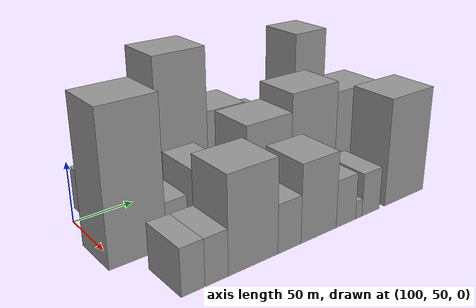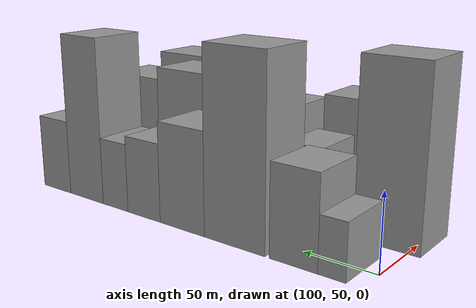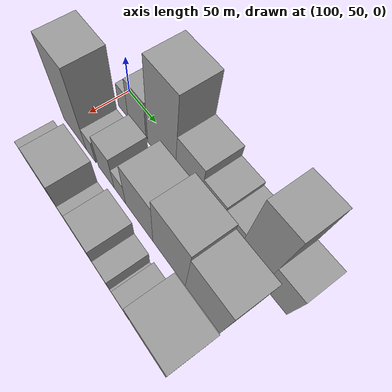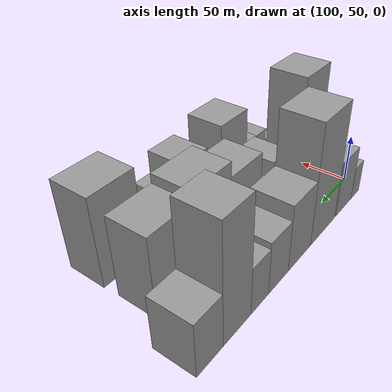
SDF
<sdf version="1.6">
 <world name="default">
  <model name="building_16">
   <static>1</static>
   <pose>100.0000 69.0831 0 0.000000 0.000000 0.000000</pose>
   <link name="link">
    <pose>0 0 18.00 0 0 0</pose>
    <collision name="collision"><geometry><box><size>40.0000 18.0495 36.0000</size></box></geometry></collision>
    <visual name="visual">
     <cast_shadows>0</cast_shadows>
     <geometry><box><size>40.0000 18.0495 36.0000</size></box></geometry>
     <material>
      <script>
       <uri>model://grey_wall/materials/scripts</uri>
       <uri>model://grey_wall/materials/textures</uri>
       <name>vrc/grey_wall</name>
      </script>
     </material>
    </visual>
   </link>
  </model>
  <model name="building_17">
   <static>1</static>
   <pose>100.0000 94.7705 0 0.000000 0.000000 0.000000</pose>
   <link name="link">
    <pose>0 0 30.00 0 0 0</pose>
    <collision name="collision"><geometry><box><size>40.0000 33.3253 60.0000</size></box></geometry></collision>
    <visual name="visual">
     <cast_shadows>0</cast_shadows>
     <geometry><box><size>40.0000 33.3253 60.0000</size></box></geometry>
     <material>
      <script>
       <uri>model://grey_wall/materials/scripts</uri>
       <uri>model://grey_wall/materials/textures</uri>
       <name>vrc/grey_wall</name>
      </script>
     </material>
    </visual>
   </link>
  </model>
  <model name="building_18">
   <static>1</static>
   <pose>100.0000 137.8663 0 0.000000 0.000000 0.000000</pose>
   <link name="link">
    <pose>0 0 61.50 0 0 0</pose>
    <collision name="collision"><geometry><box><size>40.0000 46.8662 123.0000</size></box></geometry></collision>
    <visual name="visual">
     <cast_shadows>0</cast_shadows>
     <geometry><box><size>40.0000 46.8662 123.0000</size></box></geometry>
     <material>
      <script>
       <uri>model://grey_wall/materials/scripts</uri>
       <uri>model://grey_wall/materials/textures</uri>
       <name>vrc/grey_wall</name>
      </script>
     </material>
    </visual>
   </link>
  </model>
  <model name="building_19">
   <static>1</static>
   <pose>100.0000 180.4211 0 0.000000 0.000000 0.000000</pose>
   <link name="link">
    <pose>0 0 34.50 0 0 0</pose>
    <collision name="collision"><geometry><box><size>40.0000 38.2435 69.0000</size></box></geometry></collision>
    <visual name="visual">
     <cast_shadows>0</cast_shadows>
     <geometry><box><size>40.0000 38.2435 69.0000</size></box></geometry>
     <material>
      <script>
       <uri>model://grey_wall/materials/scripts</uri>
       <uri>model://grey_wall/materials/textures</uri>
       <name>vrc/grey_wall</name>
      </script>
     </material>
    </visual>
   </link>
  </model>
  <model name="building_20">
   <static>1</static>
   <pose>100.0000 214.7776 0 0.000000 0.000000 0.000000</pose>
   <link name="link">
    <pose>0 0 27.00 0 0 0</pose>
    <collision name="collision"><geometry><box><size>40.0000 30.4695 54.0000</size></box></geometry></collision>
    <visual name="visual">
     <cast_shadows>0</cast_shadows>
     <geometry><box><size>40.0000 30.4695 54.0000</size></box></geometry>
     <material>
      <script>
       <uri>model://grey_wall/materials/scripts</uri>
       <uri>model://grey_wall/materials/textures</uri>
       <name>vrc/grey_wall</name>
      </script>
     </material>
    </visual>
   </link>
  </model>
  <model name="building_21">
   <static>1</static>
   <pose>100.0000 242.4147 0 0.000000 0.000000 0.000000</pose>
   <link name="link">
    <pose>0 0 24.00 0 0 0</pose>
    <collision name="collision"><geometry><box><size>40.0000 24.8045 48.0000</size></box></geometry></collision>
    <visual name="visual">
     <cast_shadows>0</cast_shadows>
     <geometry><box><size>40.0000 24.8045 48.0000</size></box></geometry>
     <material>
      <script>
       <uri>model://grey_wall/materials/scripts</uri>
       <uri>model://grey_wall/materials/textures</uri>
       <name>vrc/grey_wall</name>
      </script>
     </material>
    </visual>
   </link>
  </model>
  <model name="building_22">
   <static>1</static>
   <pose>100.0000 272.4213 0 0.000000 0.000000 0.000000</pose>
   <link name="link">
    <pose>0 0 58.50 0 0 0</pose>
    <collision name="collision"><geometry><box><size>40.0000 35.2088 117.0000</size></box></geometry></collision>
    <visual name="visual">
     <cast_shadows>0</cast_shadows>
     <geometry><box><size>40.0000 35.2088 117.0000</size></box></geometry>
     <material>
      <script>
       <uri>model://grey_wall/materials/scripts</uri>
       <uri>model://grey_wall/materials/textures</uri>
       <name>vrc/grey_wall</name>
      </script>
     </material>
    </visual>
   </link>
  </model>
  <model name="building_23">
   <static>1</static>
   <pose>100.0000 305.1932 0 0.000000 0.000000 0.000000</pose>
   <link name="link">
    <pose>0 0 27.00 0 0 0</pose>
    <collision name="collision"><geometry><box><size>40.0000 30.3350 54.0000</size></box></geometry></collision>
    <visual name="visual">
     <cast_shadows>0</cast_shadows>
     <geometry><box><size>40.0000 30.3350 54.0000</size></box></geometry>
     <material>
      <script>
       <uri>model://grey_wall/materials/scripts</uri>
       <uri>model://grey_wall/materials/textures</uri>
       <name>vrc/grey_wall</name>
      </script>
     </material>
    </visual>
   </link>
  </model>
  <model name="building_46">
   <static>1</static>
   <pose>155.0000 64.1442 0 0.000000 0.000000 0.000000</pose>
   <link name="link">
    <pose>0 0 58.50 0 0 0</pose>
    <collision name="collision"><geometry><box><size>40.0000 45.3029 117.0000</size></box></geometry></collision>
    <visual name="visual">
     <cast_shadows>0</cast_shadows>
     <geometry><box><size>40.0000 45.3029 117.0000</size></box></geometry>
     <material>
      <script>
       <uri>model://grey_wall/materials/scripts</uri>
       <uri>model://grey_wall/materials/textures</uri>
       <name>vrc/grey_wall</name>
      </script>
     </material>
    </visual>
   </link>
  </model>
  <model name="building_47">
   <static>1</static>
   <pose>155.0000 95.9252 0 0.000000 0.000000 0.000000</pose>
   <link name="link">
    <pose>0 0 18.00 0 0 0</pose>
    <collision name="collision"><geometry><box><size>40.0000 18.2590 36.0000</size></box></geometry></collision>
    <visual name="visual">
     <cast_shadows>0</cast_shadows>
     <geometry><box><size>40.0000 18.2590 36.0000</size></box></geometry>
     <material>
      <script>
       <uri>model://grey_wall/materials/scripts</uri>
       <uri>model://grey_wall/materials/textures</uri>
       <name>vrc/grey_wall</name>
      </script>
     </material>
    </visual>
   </link>
  </model>
  <model name="building_48">
   <static>1</static>
   <pose>155.0000 124.2762 0 0.000000 0.000000 0.000000</pose>
   <link name="link">
    <pose>0 0 27.00 0 0 0</pose>
    <collision name="collision"><geometry><box><size>40.0000 28.4430 54.0000</size></box></geometry></collision>
    <visual name="visual">
     <cast_shadows>0</cast_shadows>
     <geometry><box><size>40.0000 28.4430 54.0000</size></box></geometry>
     <material>
      <script>
       <uri>model://grey_wall/materials/scripts</uri>
       <uri>model://grey_wall/materials/textures</uri>
       <name>vrc/grey_wall</name>
      </script>
     </material>
    </visual>
   </link>
  </model>
  <model name="building_49">
   <static>1</static>
   <pose>155.0000 148.5472 0 0.000000 0.000000 0.000000</pose>
   <link name="link">
    <pose>0 0 18.00 0 0 0</pose>
    <collision name="collision"><geometry><box><size>40.0000 20.0991 36.0000</size></box></geometry></collision>
    <visual name="visual">
     <cast_shadows>0</cast_shadows>
     <geometry><box><size>40.0000 20.0991 36.0000</size></box></geometry>
     <material>
      <script>
       <uri>model://grey_wall/materials/scripts</uri>
       <uri>model://grey_wall/materials/textures</uri>
       <name>vrc/grey_wall</name>
      </script>
     </material>
    </visual>
   </link>
  </model>
  <model name="building_50">
   <static>1</static>
   <pose>155.0000 180.9674 0 0.000000 0.000000 0.000000</pose>
   <link name="link">
    <pose>0 0 37.50 0 0 0</pose>
    <collision name="collision"><geometry><box><size>40.0000 44.7412 75.0000</size></box></geometry></collision>
    <visual name="visual">
     <cast_shadows>0</cast_shadows>
     <geometry><box><size>40.0000 44.7412 75.0000</size></box></geometry>
     <material>
      <script>
       <uri>model://grey_wall/materials/scripts</uri>
       <uri>model://grey_wall/materials/textures</uri>
       <name>vrc/grey_wall</name>
      </script>
     </material>
    </visual>
   </link>
  </model>
  <model name="building_51">
   <static>1</static>
   <pose>155.0000 227.7921 0 0.000000 0.000000 0.000000</pose>
   <link name="link">
    <pose>0 0 45.00 0 0 0</pose>
    <collision name="collision"><geometry><box><size>40.0000 48.9083 90.0000</size></box></geometry></collision>
    <visual name="visual">
     <cast_shadows>0</cast_shadows>
     <geometry><box><size>40.0000 48.9083 90.0000</size></box></geometry>
     <material>
      <script>
       <uri>model://grey_wall/materials/scripts</uri>
       <uri>model://grey_wall/materials/textures</uri>
       <name>vrc/grey_wall</name>
      </script>
     </material>
    </visual>
   </link>
  </model>
  <model name="building_52">
   <static>1</static>
   <pose>155.0000 276.0466 0 0.000000 0.000000 0.000000</pose>
   <link name="link">
    <pose>0 0 40.50 0 0 0</pose>
    <collision name="collision"><geometry><box><size>40.0000 47.6007 81.0000</size></box></geometry></collision>
    <visual name="visual">
     <cast_shadows>0</cast_shadows>
     <geometry><box><size>40.0000 47.6007 81.0000</size></box></geometry>
     <material>
      <script>
       <uri>model://grey_wall/materials/scripts</uri>
       <uri>model://grey_wall/materials/textures</uri>
       <name>vrc/grey_wall</name>
      </script>
     </material>
    </visual>
   </link>
  </model>
  <model name="building_79">
   <static>1</static>
   <pose>210.0000 72.5582 0 0.000000 0.000000 0.000000</pose>
   <link name="link">
    <pose>0 0 18.00 0 0 0</pose>
    <collision name="collision"><geometry><box><size>40.0000 18.1257 36.0000</size></box></geometry></collision>
    <visual name="visual">
     <cast_shadows>0</cast_shadows>
     <geometry><box><size>40.0000 18.1257 36.0000</size></box></geometry>
     <material>
      <script>
       <uri>model://grey_wall/materials/scripts</uri>
       <uri>model://grey_wall/materials/textures</uri>
       <name>vrc/grey_wall</name>
      </script>
     </material>
    </visual>
   </link>
  </model>
  <model name="building_80">
   <static>1</static>
   <pose>210.0000 90.9927 0 0.000000 0.000000 0.000000</pose>
   <link name="link">
    <pose>0 0 18.00 0 0 0</pose>
    <collision name="collision"><geometry><box><size>40.0000 18.7432 36.0000</size></box></geometry></collision>
    <visual name="visual">
     <cast_shadows>0</cast_shadows>
     <geometry><box><size>40.0000 18.7432 36.0000</size></box></geometry>
     <material>
      <script>
       <uri>model://grey_wall/materials/scripts</uri>
       <uri>model://grey_wall/materials/textures</uri>
       <name>vrc/grey_wall</name>
      </script>
     </material>
    </visual>
   </link>
  </model>
  <model name="building_81">
   <static>1</static>
   <pose>210.0000 121.7398 0 0.000000 0.000000 0.000000</pose>
   <link name="link">
    <pose>0 0 37.50 0 0 0</pose>
    <collision name="collision"><geometry><box><size>40.0000 42.7511 75.0000</size></box></geometry></collision>
    <visual name="visual">
     <cast_shadows>0</cast_shadows>
     <geometry><box><size>40.0000 42.7511 75.0000</size></box></geometry>
     <material>
      <script>
       <uri>model://grey_wall/materials/scripts</uri>
       <uri>model://grey_wall/materials/textures</uri>
       <name>vrc/grey_wall</name>
      </script>
     </material>
    </visual>
   </link>
  </model>
  <model name="building_82">
   <static>1</static>
   <pose>210.0000 153.9491 0 0.000000 0.000000 0.000000</pose>
   <link name="link">
    <pose>0 0 19.50 0 0 0</pose>
    <collision name="collision"><geometry><box><size>40.0000 21.6674 39.0000</size></box></geometry></collision>
    <visual name="visual">
     <cast_shadows>0</cast_shadows>
     <geometry><box><size>40.0000 21.6674 39.0000</size></box></geometry>
     <material>
      <script>
       <uri>model://grey_wall/materials/scripts</uri>
       <uri>model://grey_wall/materials/textures</uri>
       <name>vrc/grey_wall</name>
      </script>
     </material>
    </visual>
   </link>
  </model>
  <model name="building_83">
   <static>1</static>
   <pose>210.0000 182.4364 0 0.000000 0.000000 0.000000</pose>
   <link name="link">
    <pose>0 0 31.50 0 0 0</pose>
    <collision name="collision"><geometry><box><size>40.0000 35.3073 63.0000</size></box></geometry></collision>
    <visual name="visual">
     <cast_shadows>0</cast_shadows>
     <geometry><box><size>40.0000 35.3073 63.0000</size></box></geometry>
     <material>
      <script>
       <uri>model://grey_wall/materials/scripts</uri>
       <uri>model://grey_wall/materials/textures</uri>
       <name>vrc/grey_wall</name>
      </script>
     </material>
    </visual>
   </link>
  </model>
  <model name="building_84">
   <static>1</static>
   <pose>210.0000 210.5371 0 0.000000 0.000000 0.000000</pose>
   <link name="link">
    <pose>0 0 19.50 0 0 0</pose>
    <collision name="collision"><geometry><box><size>40.0000 20.8941 39.0000</size></box></geometry></collision>
    <visual name="visual">
     <cast_shadows>0</cast_shadows>
     <geometry><box><size>40.0000 20.8941 39.0000</size></box></geometry>
     <material>
      <script>
       <uri>model://grey_wall/materials/scripts</uri>
       <uri>model://grey_wall/materials/textures</uri>
       <name>vrc/grey_wall</name>
      </script>
     </material>
    </visual>
   </link>
  </model>
  <model name="building_85">
   <static>1</static>
   <pose>210.0000 224.4818 0 0.000000 0.000000 0.000000</pose>
   <link name="link">
    <pose>0 0 7.50 0 0 0</pose>
    <collision name="collision"><geometry><box><size>40.0000 6.9952 15.0000</size></box></geometry></collision>
    <visual name="visual">
     <cast_shadows>0</cast_shadows>
     <geometry><box><size>40.0000 6.9952 15.0000</size></box></geometry>
     <material>
      <script>
       <uri>model://grey_wall/materials/scripts</uri>
       <uri>model://grey_wall/materials/textures</uri>
       <name>vrc/grey_wall</name>
      </script>
     </material>
    </visual>
   </link>
  </model>
  <model name="building_86">
   <static>1</static>
   <pose>210.0000 237.9366 0 0.000000 0.000000 0.000000</pose>
   <link name="link">
    <pose>0 0 18.00 0 0 0</pose>
    <collision name="collision"><geometry><box><size>40.0000 19.9146 36.0000</size></box></geometry></collision>
    <visual name="visual">
     <cast_shadows>0</cast_shadows>
     <geometry><box><size>40.0000 19.9146 36.0000</size></box></geometry>
     <material>
      <script>
       <uri>model://grey_wall/materials/scripts</uri>
       <uri>model://grey_wall/materials/textures</uri>
       <name>vrc/grey_wall</name>
      </script>
     </material>
    </visual>
   </link>
  </model>
  <model name="building_87">
   <static>1</static>
   <pose>210.0000 277.5494 0 0.000000 0.000000 0.000000</pose>
   <link name="link">
    <pose>0 0 45.00 0 0 0</pose>
    <collision name="collision"><geometry><box><size>40.0000 47.3110 90.0000</size></box></geometry></collision>
    <visual name="visual">
     <cast_shadows>0</cast_shadows>
     <geometry><box><size>40.0000 47.3110 90.0000</size></box></geometry>
     <material>
      <script>
       <uri>model://grey_wall/materials/scripts</uri>
       <uri>model://grey_wall/materials/textures</uri>
       <name>vrc/grey_wall</name>
      </script>
     </material>
    </visual>
   </link>
  </model>
 </world>
</sdf>
